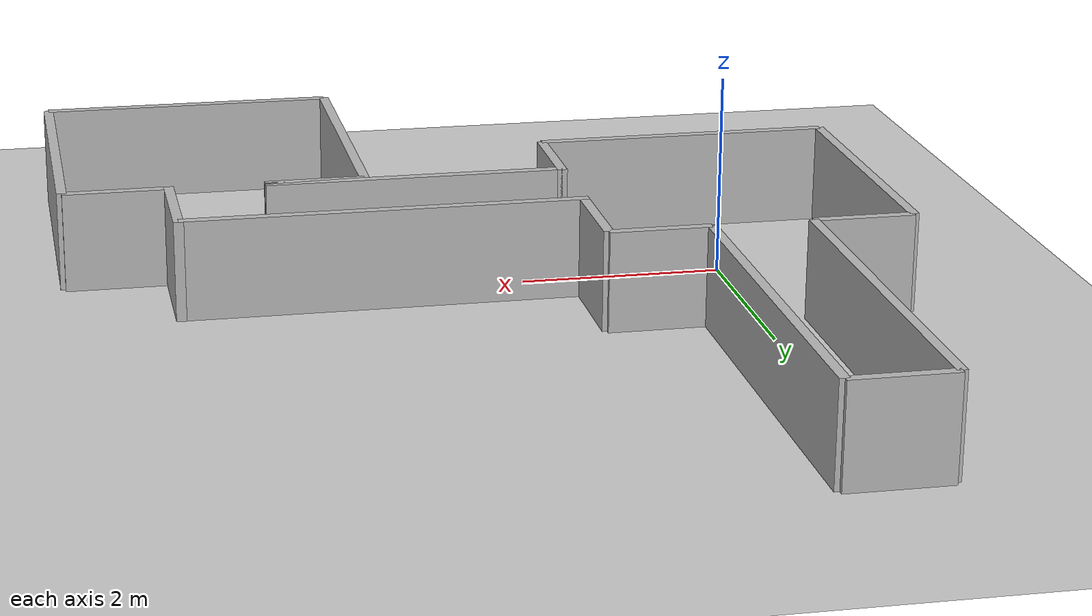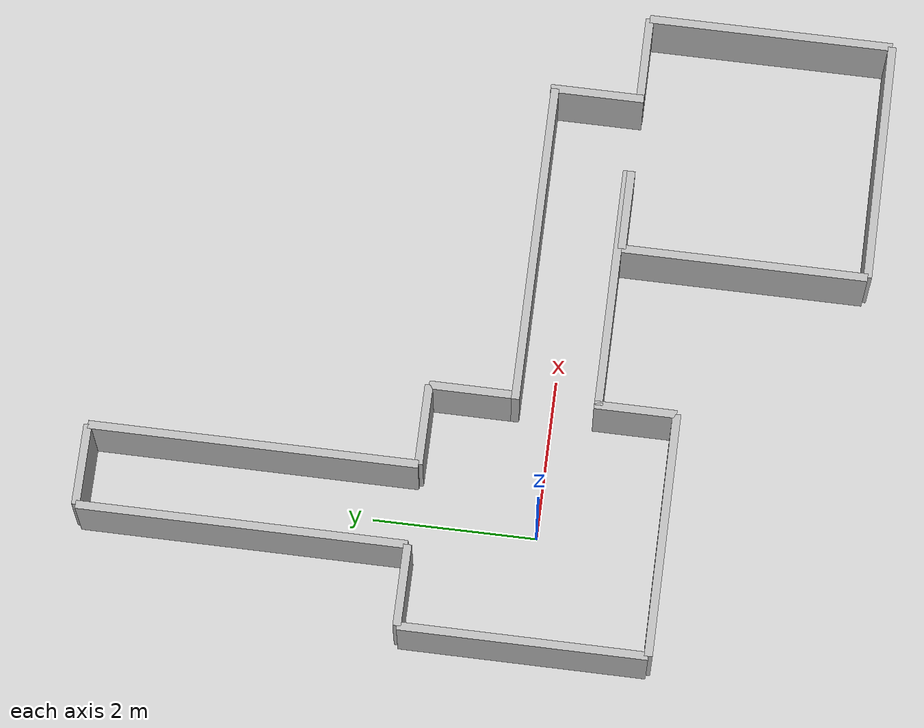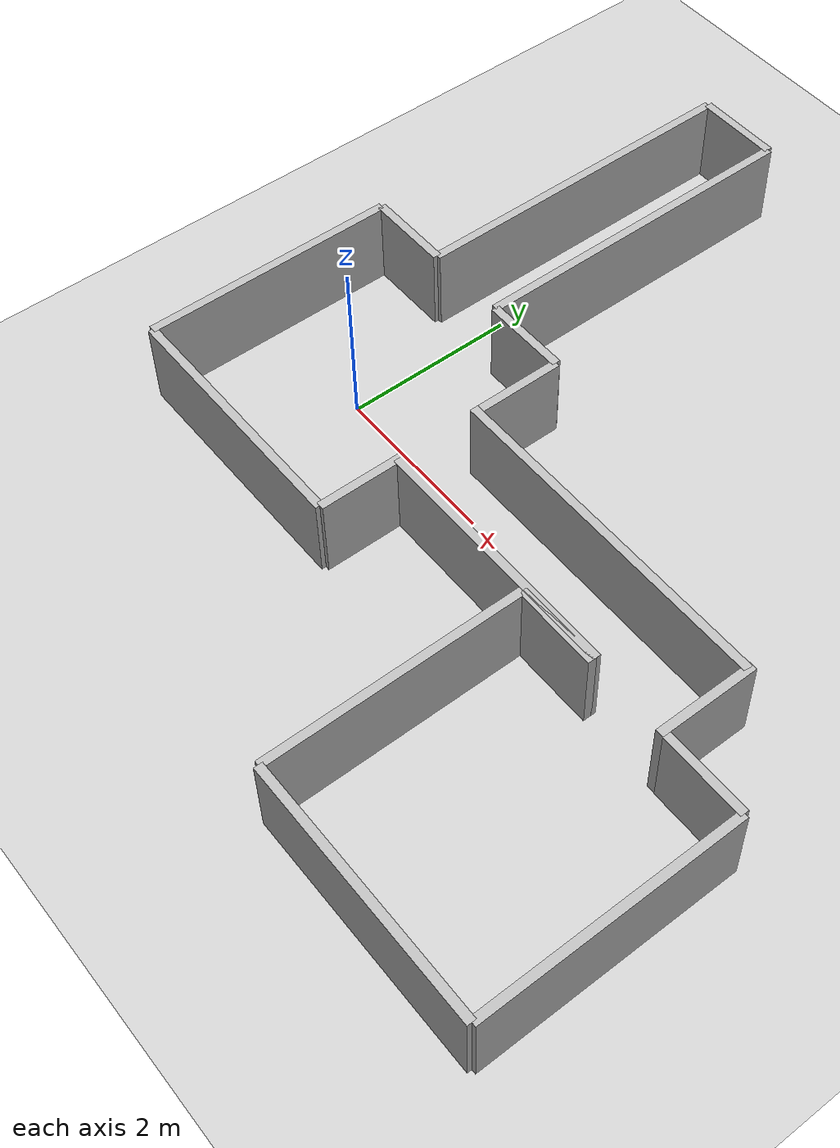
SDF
<?xml version="1.0" ?>
<sdf version="1.8">
  <world name="default">
    <physics type="ode">
      <real_time_update_rate>1000.0</real_time_update_rate>
      <max_step_size>0.001</max_step_size>
      <real_time_factor>1</real_time_factor>
      <ode>
        <solver>
          <type>quick</type>
          <iters>150</iters>
          <precon_iters>0</precon_iters>
          <sor>1.400000</sor>
          <use_dynamic_moi_rescaling>1</use_dynamic_moi_rescaling>
        </solver>
        <constraints>
          <cfm>0.00001</cfm>
          <erp>0.2</erp>
          <contact_max_correcting_vel>2000.000000</contact_max_correcting_vel>
          <contact_surface_layer>0.01000</contact_surface_layer>
        </constraints>
      </ode>
    </physics>

    <!-- Plugins -->
    <plugin filename="gz-sim-physics-system" name="gz::sim::systems::Physics"/>
    <plugin filename="gz-sim-user-commands-system" name="gz::sim::systems::UserCommands"/>
    <plugin filename="gz-sim-scene-broadcaster-system" name="gz::sim::systems::SceneBroadcaster"/>
    <plugin filename="gz-sim-sensors-system" name="gz::sim::systems::Sensors">
      <render_engine>ogre2</render_engine>
    </plugin>
    <plugin filename="gz-sim-imu-system" name="gz::sim::systems::Imu"/>

    <!-- Ground plane & Sun -->
    <include>
      <uri>https://fuel.gazebosim.org/1.0/OpenRobotics/models/Ground Plane</uri>
    </include>
    <include>
      <uri>https://fuel.gazebosim.org/1.0/OpenRobotics/models/Sun</uri>
    </include>

    <model name="wall_south">
      <static>true</static>
      <link name="link">
        <collision name="collision"><geometry><box><size>3 0.1 1</size></box></geometry></collision>
        <visual name="visual"><geometry><box><size>3 0.1 1</size></box></geometry></visual>
      </link>
      <pose>0 -1.5 0.5 0 0 0</pose>
    </model>

    <model name="wall_west">
      <static>true</static>
      <link name="link">
        <collision name="collision"><geometry><box><size>0.1 3 1</size></box></geometry></collision>
        <visual name="visual"><geometry><box><size>0.1 3 1</size></box></geometry></visual>
      </link>
      <pose>-1.5 0 0.5 0 0 0</pose>
    </model>

    <model name="wall_east_top">
      <static>true</static>
      <link name="link">
        <collision name="collision"><geometry><box><size>0.1 1 1</size></box></geometry></collision>
        <visual name="visual"><geometry><box><size>0.1 1 1</size></box></geometry></visual>
      </link>
      <pose>1.5 1 0.5 0 0 0</pose>
    </model>

    <model name="wall_east_bottom">
      <static>true</static>
      <link name="link">
        <collision name="collision"><geometry><box><size>0.1 1 1</size></box></geometry></collision>
        <visual name="visual"><geometry><box><size>0.1 1 1</size></box></geometry></visual>
      </link>
      <pose>1.5 -1 0.5 0 0 0</pose>
    </model>

    <model name="wall_north_left">
      <static>true</static>
      <link name="link">
        <collision name="collision"><geometry><box><size>1 0.1 1</size></box></geometry></collision>
        <visual name="visual"><geometry><box><size>1 0.1 1</size></box></geometry></visual>
      </link>
      <pose>-1 1.5 0.5 0 0 0</pose>
    </model>

    <model name="wall_north_right">
      <static>true</static>
      <link name="link">
        <collision name="collision"><geometry><box><size>1 0.1 1</size></box></geometry></collision>
        <visual name="visual"><geometry><box><size>1 0.1 1</size></box></geometry></visual>
      </link>
      <pose>1 1.5 0.5 0 0 0</pose>
    </model>

    <model name="corridor_left">
      <static>true</static>
      <link name="link">
        <collision name="collision"><geometry><box><size>0.1 4 1</size></box></geometry></collision>
        <visual name="visual"><geometry><box><size>0.1 4 1</size></box></geometry></visual>
      </link>
      <pose>-0.5 3.5 0.5 0 0 0</pose>
    </model>

    <model name="corridor_right">
      <static>true</static>
      <link name="link">
        <collision name="collision"><geometry><box><size>0.1 4 1</size></box></geometry></collision>
        <visual name="visual"><geometry><box><size>0.1 4 1</size></box></geometry></visual>
      </link>
      <pose>0.5 3.5 0.5 0 0 0</pose>
    </model>

    <model name="corridor_end">
      <static>true</static>
      <link name="link">
        <collision name="collision"><geometry><box><size>1 0.1 1</size></box></geometry></collision>
        <visual name="visual"><geometry><box><size>1 0.1 1</size></box></geometry></visual>
      </link>
      <pose>0 5.5 0.5 0 0 0</pose>
    </model>

    <model name="wall_south2">
      <static>true</static>
      <link name="link">
        <collision name="collision">
          <geometry><box><size>3 0.1 1</size></box></geometry>
        </collision>
        <visual name="visual">
          <geometry><box><size>3 0.1 1</size></box></geometry>
        </visual>
      </link>
      <pose>5 -3.6 0.5 0 0 0</pose>
    </model>

    <model name="wall_west2">
      <static>true</static>
      <link name="link">
        <collision name="collision">
          <geometry><box><size>0.1 3 1</size></box></geometry>
        </collision>
        <visual name="visual">
          <geometry><box><size>0.1 3 1</size></box></geometry>
        </visual>
      </link>
      <pose>3.5 -2.1 0.5 0 0 0</pose>
    </model>

    <model name="wall_east2">
      <static>true</static>
      <link name="link">
        <collision name="collision">
          <geometry><box><size>0.1 3 1</size></box></geometry>
        </collision>
        <visual name="visual">
          <geometry><box><size>0.1 3 1</size></box></geometry>
        </visual>
      </link>
      <pose>6.5 -2.1 0.5 0 0 0</pose>
    </model>

    <model name="wall_north_left2">
      <static>true</static>
      <link name="link">
        <collision name="collision">
          <geometry><box><size>1 0.1 1</size></box></geometry>
        </collision>
        <visual name="visual">
          <geometry><box><size>1 0.1 1</size></box></geometry>
        </visual>
      </link>
      <pose>4 -0.6 0.5 0 0 0</pose>
    </model>

    <model name="wall_north_right2">
      <static>true</static>
      <link name="link">
        <collision name="collision">
          <geometry><box><size>1 0.1 1</size></box></geometry>
        </collision>
        <visual name="visual">
          <geometry><box><size>1 0.1 1</size></box></geometry>
        </visual>
      </link>
      <pose>6 -0.6 0.5 0 0 0</pose>
    </model>

    <model name="corridor_L_south">
      <static>true</static>
      <link name="link">
        <collision name="collision"><geometry><box><size>3 0.1 1</size></box></geometry></collision>
        <visual name="visual"><geometry><box><size>3 0.1 1</size></box></geometry></visual>
      </link>
      <pose>3 -0.55 0.5 0 0 0</pose>
    </model>

    <model name="corridor_L_north">
      <static>true</static>
      <link name="link">
        <collision name="collision"><geometry><box><size>4 0.1 1</size></box></geometry></collision>
        <visual name="visual"><geometry><box><size>4 0.1 1</size></box></geometry></visual>
      </link>
      <pose>3.45 0.45 0.5 0 0 0</pose>
    </model>

    <model name="corridor_L_east">
      <static>true</static>
      <link name="link">
        <collision name="collision">
          <geometry><box><size>0.1 1.15 1</size></box></geometry>
        </collision>
        <visual name="visual">
          <geometry><box><size>0.1 1.15 1</size></box></geometry>
        </visual>
      </link>
      <pose>5.45 -0.07 0.5 0 0 0</pose>
    </model>
  </world>
</sdf>
